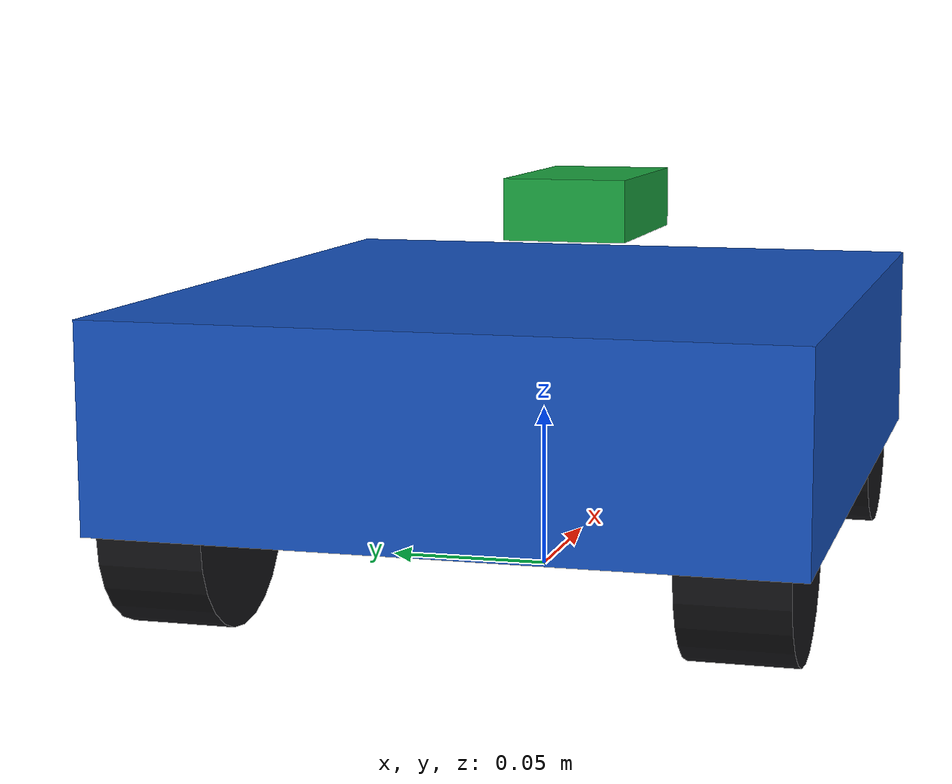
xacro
<?xml version="1.0"?>
<robot xmlns:xacro="http://www.ros.org/wiki/xacro" name="vicon_mecanum_car">
  <!--
    当前底盘尺寸是软件开发占位值。硬件到达后只需修改启动参数，无需重画模型。
    wheelbase：前后轮中心距；track_width：左右轮中心距。
  -->
  <xacro:arg name="chassis_length" default="0.24"/>
  <xacro:arg name="chassis_width" default="0.20"/>
  <xacro:arg name="chassis_height" default="0.06"/>
  <xacro:arg name="wheelbase" default="0.18"/>
  <xacro:arg name="track_width" default="0.16"/>
  <xacro:arg name="wheel_diameter" default="0.060"/>
  <xacro:arg name="wheel_width" default="0.0306"/>

  <xacro:property name="chassis_length" value="$(arg chassis_length)"/>
  <xacro:property name="chassis_width" value="$(arg chassis_width)"/>
  <xacro:property name="chassis_height" value="$(arg chassis_height)"/>
  <xacro:property name="wheelbase" value="$(arg wheelbase)"/>
  <xacro:property name="track_width" value="$(arg track_width)"/>
  <xacro:property name="wheel_radius" value="${0.5 * float('$(arg wheel_diameter)')}"/>
  <xacro:property name="wheel_width" value="$(arg wheel_width)"/>

  <material name="chassis_blue">
    <color rgba="0.08 0.32 0.75 1.0"/>
  </material>
  <material name="wheel_dark">
    <color rgba="0.08 0.08 0.09 1.0"/>
  </material>
  <material name="camera_green">
    <color rgba="0.10 0.65 0.25 1.0"/>
  </material>

  <link name="base_footprint"/>

  <link name="base_link">
    <visual>
      <geometry>
        <box size="${chassis_length} ${chassis_width} ${chassis_height}"/>
      </geometry>
      <material name="chassis_blue"/>
    </visual>
    <collision>
      <geometry>
        <box size="${chassis_length} ${chassis_width} ${chassis_height}"/>
      </geometry>
    </collision>
    <!-- 质量和惯量也是占位值，未来做动力学仿真时必须实测。 -->
    <inertial>
      <mass value="2.0"/>
      <inertia ixx="0.008" ixy="0.0" ixz="0.0"
               iyy="0.012" iyz="0.0" izz="0.018"/>
    </inertial>
  </link>

  <joint name="base_footprint_joint" type="fixed">
    <parent link="base_footprint"/>
    <child link="base_link"/>
    <origin xyz="0 0 ${wheel_radius + 0.5 * chassis_height}" rpy="0 0 0"/>
  </joint>

  <xacro:macro name="wheel" params="name x y">
    <link name="${name}">
      <visual>
        <!-- 圆柱仅表示60 mm麦轮外廓，不绘制独立滚子。 -->
        <origin xyz="0 0 0" rpy="${pi / 2.0} 0 0"/>
        <geometry>
          <cylinder radius="${wheel_radius}" length="${wheel_width}"/>
        </geometry>
        <material name="wheel_dark"/>
      </visual>
      <collision>
        <origin xyz="0 0 0" rpy="${pi / 2.0} 0 0"/>
        <geometry>
          <cylinder radius="${wheel_radius}" length="${wheel_width}"/>
        </geometry>
      </collision>
      <inertial>
        <mass value="0.07"/>
        <inertia ixx="0.00004" ixy="0.0" ixz="0.0"
                 iyy="0.00004" iyz="0.0" izz="0.00006"/>
      </inertial>
    </link>
    <joint name="${name}_joint" type="continuous">
      <parent link="base_link"/>
      <child link="${name}"/>
      <origin xyz="${x} ${y} ${-0.5 * chassis_height}" rpy="0 0 0"/>
      <axis xyz="0 1 0"/>
    </joint>
  </xacro:macro>

  <xacro:wheel name="wheel_front_left"  x="${ wheelbase / 2.0}" y="${ track_width / 2.0}"/>
  <xacro:wheel name="wheel_front_right" x="${ wheelbase / 2.0}" y="${-track_width / 2.0}"/>
  <xacro:wheel name="wheel_rear_left"   x="${-wheelbase / 2.0}" y="${ track_width / 2.0}"/>
  <xacro:wheel name="wheel_rear_right"  x="${-wheelbase / 2.0}" y="${-track_width / 2.0}"/>

  <!-- 刚体原点和base_link的真实偏移由car_state_bridge参数标定。 -->
  <link name="vicon_rigid_body"/>
  <joint name="vicon_rigid_body_joint" type="fixed">
    <parent link="base_link"/>
    <child link="vicon_rigid_body"/>
    <origin xyz="0 0 ${0.5 * chassis_height}" rpy="0 0 0"/>
  </joint>

  <!-- K230D仅作外观和camera_link占位，安装位置到货后测量。 -->
  <link name="camera_link">
    <visual>
      <origin xyz="0 0 0" rpy="0 0 0"/>
      <geometry>
        <box size="0.07 0.04 0.02"/>
      </geometry>
      <material name="camera_green"/>
    </visual>
  </link>
  <joint name="camera_mount_joint" type="fixed">
    <parent link="base_link"/>
    <child link="camera_link"/>
    <origin xyz="${0.25 * chassis_length} 0 ${0.5 * chassis_height + 0.02}" rpy="0 0 0"/>
  </joint>
</robot>
